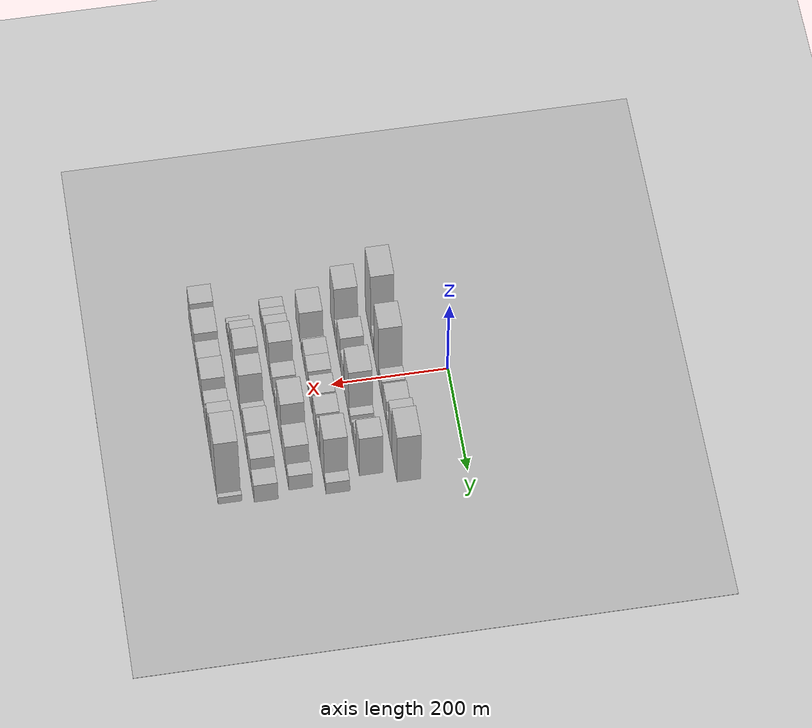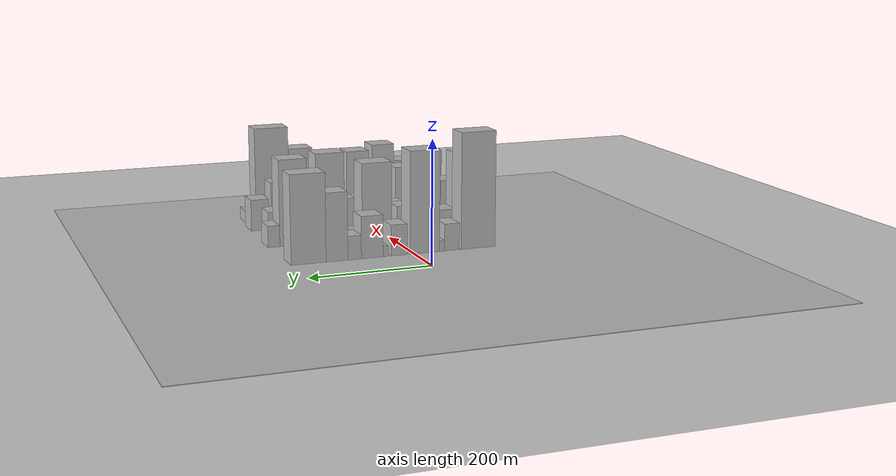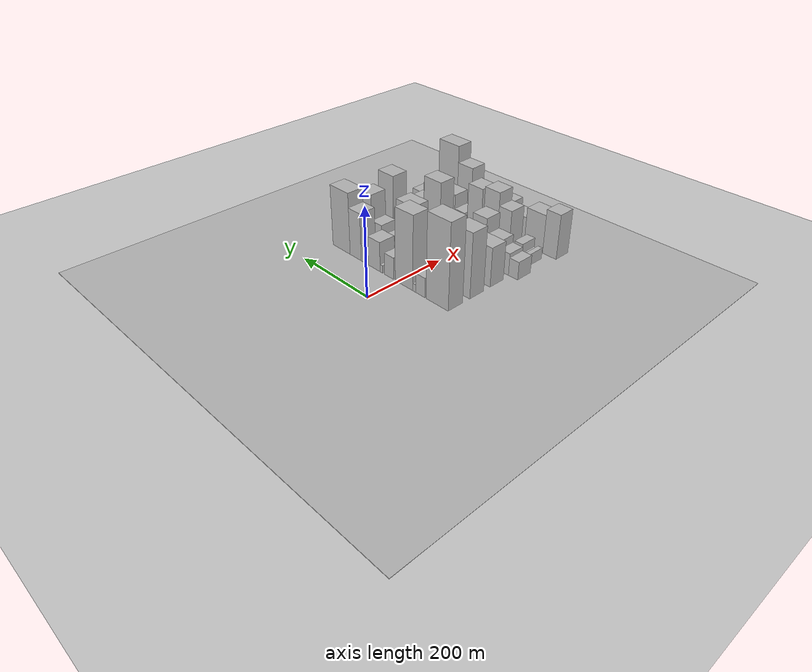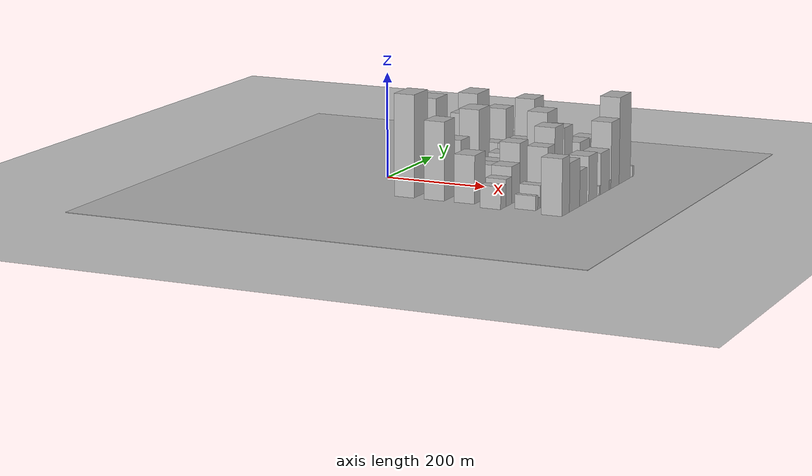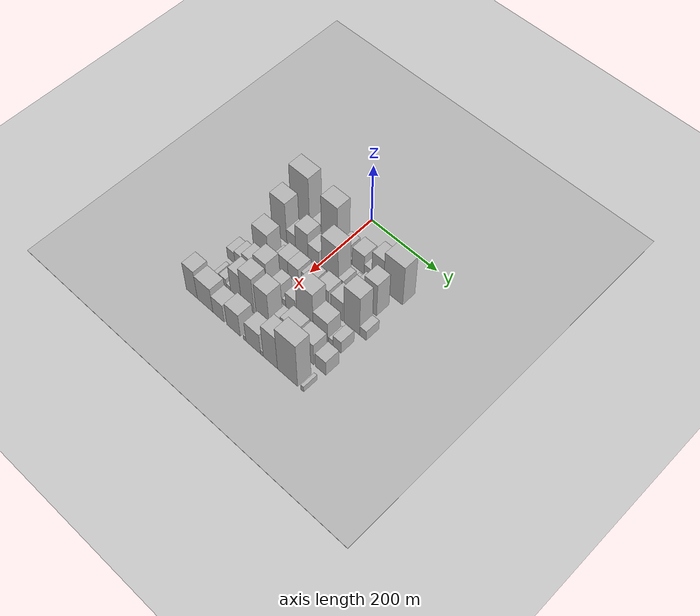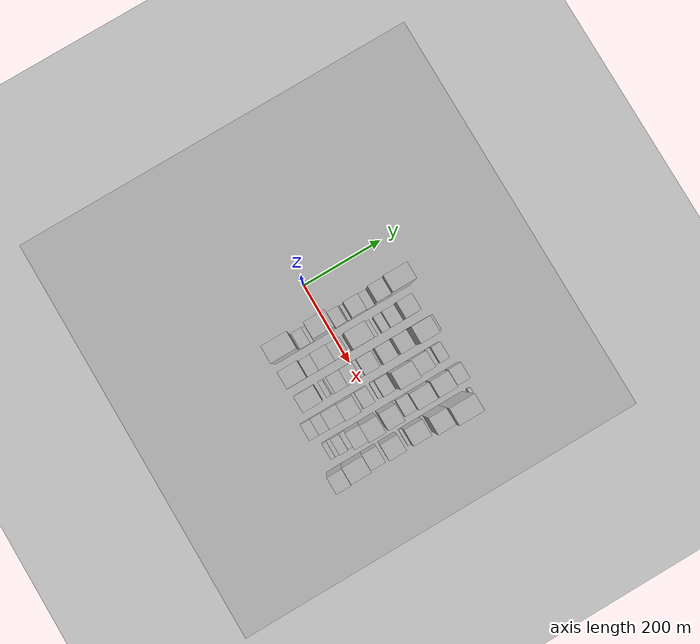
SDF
<sdf version="1.6">
 <world name="default">
  <include><name>ground_plane_1</name><uri>model://HANNAS_ground_plane</uri></include>
  <include>
   <name>ground_plane_2</name>
   <uri>model://HANNAS_ground_plane</uri>
   <pose>100 0 0  0 0 0</pose>
  </include>
  <model name="building_23">
   <static>1</static>
   <pose>100.0000 -110.9368 0 0.000000 0.000000 0.000000</pose>
   <link name="link">
    <pose>0 0 96.00 0 0 0</pose>
    <collision name="collision"><geometry><box><size>40.0000 59.7139 192.0000</size></box></geometry></collision>
    <visual name="visual">
     <cast_shadows>0</cast_shadows>
     <geometry><box><size>40.0000 59.7139 192.0000</size></box></geometry>
     <material>
      <script>
       <uri>model://HANNAS_wall/materials/scripts</uri>
       <uri>model://HANNAS_wall/materials/textures</uri>
       <name>vrc/HANNAS_wall</name>
      </script>
     </material>
    </visual>
   </link>
  </model>
  <model name="building_24">
   <static>1</static>
   <pose>100.0000 -65.2518 0 0.000000 0.000000 0.000000</pose>
   <link name="link">
    <pose>0 0 22.50 0 0 0</pose>
    <collision name="collision"><geometry><box><size>40.0000 25.6559 45.0000</size></box></geometry></collision>
    <visual name="visual">
     <cast_shadows>0</cast_shadows>
     <geometry><box><size>40.0000 25.6559 45.0000</size></box></geometry>
     <material>
      <script>
       <uri>model://HANNAS_wall/materials/scripts</uri>
       <uri>model://HANNAS_wall/materials/textures</uri>
       <name>vrc/HANNAS_wall</name>
      </script>
     </material>
    </visual>
   </link>
  </model>
  <model name="building_25">
   <static>1</static>
   <pose>100.0000 -48.0510 0 0.000000 0.000000 0.000000</pose>
   <link name="link">
    <pose>0 0 9.00 0 0 0</pose>
    <collision name="collision"><geometry><box><size>40.0000 8.7458 18.0000</size></box></geometry></collision>
    <visual name="visual">
     <cast_shadows>0</cast_shadows>
     <geometry><box><size>40.0000 8.7458 18.0000</size></box></geometry>
     <material>
      <script>
       <uri>model://HANNAS_wall/materials/scripts</uri>
       <uri>model://HANNAS_wall/materials/textures</uri>
       <name>vrc/HANNAS_wall</name>
      </script>
     </material>
    </visual>
   </link>
  </model>
  <model name="building_26">
   <static>1</static>
   <pose>100.0000 -18.4323 0 0.000000 0.000000 0.000000</pose>
   <link name="link">
    <pose>0 0 84.00 0 0 0</pose>
    <collision name="collision"><geometry><box><size>40.0000 50.4916 168.0000</size></box></geometry></collision>
    <visual name="visual">
     <cast_shadows>0</cast_shadows>
     <geometry><box><size>40.0000 50.4916 168.0000</size></box></geometry>
     <material>
      <script>
       <uri>model://HANNAS_wall/materials/scripts</uri>
       <uri>model://HANNAS_wall/materials/textures</uri>
       <name>vrc/HANNAS_wall</name>
      </script>
     </material>
    </visual>
   </link>
  </model>
  <model name="building_27">
   <static>1</static>
   <pose>100.0000 25.4766 0 0.000000 0.000000 0.000000</pose>
   <link name="link">
    <pose>0 0 25.50 0 0 0</pose>
    <collision name="collision"><geometry><box><size>40.0000 27.3262 51.0000</size></box></geometry></collision>
    <visual name="visual">
     <cast_shadows>0</cast_shadows>
     <geometry><box><size>40.0000 27.3262 51.0000</size></box></geometry>
     <material>
      <script>
       <uri>model://HANNAS_wall/materials/scripts</uri>
       <uri>model://HANNAS_wall/materials/textures</uri>
       <name>vrc/HANNAS_wall</name>
      </script>
     </material>
    </visual>
   </link>
  </model>
  <model name="building_28">
   <static>1</static>
   <pose>100.0000 48.3053 0 0.000000 0.000000 0.000000</pose>
   <link name="link">
    <pose>0 0 9.00 0 0 0</pose>
    <collision name="collision"><geometry><box><size>40.0000 8.3312 18.0000</size></box></geometry></collision>
    <visual name="visual">
     <cast_shadows>0</cast_shadows>
     <geometry><box><size>40.0000 8.3312 18.0000</size></box></geometry>
     <material>
      <script>
       <uri>model://HANNAS_wall/materials/scripts</uri>
       <uri>model://HANNAS_wall/materials/textures</uri>
       <name>vrc/HANNAS_wall</name>
      </script>
     </material>
    </visual>
   </link>
  </model>
  <model name="building_29">
   <static>1</static>
   <pose>100.0000 70.6988 0 0.000000 0.000000 0.000000</pose>
   <link name="link">
    <pose>0 0 34.50 0 0 0</pose>
    <collision name="collision"><geometry><box><size>40.0000 36.4558 69.0000</size></box></geometry></collision>
    <visual name="visual">
     <cast_shadows>0</cast_shadows>
     <geometry><box><size>40.0000 36.4558 69.0000</size></box></geometry>
     <material>
      <script>
       <uri>model://HANNAS_wall/materials/scripts</uri>
       <uri>model://HANNAS_wall/materials/textures</uri>
       <name>vrc/HANNAS_wall</name>
      </script>
     </material>
    </visual>
   </link>
  </model>
  <model name="building_30">
   <static>1</static>
   <pose>100.0000 100.1472 0 0.000000 0.000000 0.000000</pose>
   <link name="link">
    <pose>0 0 19.50 0 0 0</pose>
    <collision name="collision"><geometry><box><size>40.0000 22.4409 39.0000</size></box></geometry></collision>
    <visual name="visual">
     <cast_shadows>0</cast_shadows>
     <geometry><box><size>40.0000 22.4409 39.0000</size></box></geometry>
     <material>
      <script>
       <uri>model://HANNAS_wall/materials/scripts</uri>
       <uri>model://HANNAS_wall/materials/textures</uri>
       <name>vrc/HANNAS_wall</name>
      </script>
     </material>
    </visual>
   </link>
  </model>
  <model name="building_31">
   <static>1</static>
   <pose>100.0000 129.2735 0 0.000000 0.000000 0.000000</pose>
   <link name="link">
    <pose>0 0 55.50 0 0 0</pose>
    <collision name="collision"><geometry><box><size>40.0000 35.8119 111.0000</size></box></geometry></collision>
    <visual name="visual">
     <cast_shadows>0</cast_shadows>
     <geometry><box><size>40.0000 35.8119 111.0000</size></box></geometry>
     <material>
      <script>
       <uri>model://HANNAS_wall/materials/scripts</uri>
       <uri>model://HANNAS_wall/materials/textures</uri>
       <name>vrc/HANNAS_wall</name>
      </script>
     </material>
    </visual>
   </link>
  </model>
  <model name="building_32">
   <static>1</static>
   <pose>100.0000 175.7435 0 0.000000 0.000000 0.000000</pose>
   <link name="link">
    <pose>0 0 72.00 0 0 0</pose>
    <collision name="collision"><geometry><box><size>40.0000 57.1281 144.0000</size></box></geometry></collision>
    <visual name="visual">
     <cast_shadows>0</cast_shadows>
     <geometry><box><size>40.0000 57.1281 144.0000</size></box></geometry>
     <material>
      <script>
       <uri>model://HANNAS_wall/materials/scripts</uri>
       <uri>model://HANNAS_wall/materials/textures</uri>
       <name>vrc/HANNAS_wall</name>
      </script>
     </material>
    </visual>
   </link>
  </model>
  <model name="building_79">
   <static>1</static>
   <pose>160.0000 -117.7544 0 0.000000 0.000000 0.000000</pose>
   <link name="link">
    <pose>0 0 73.50 0 0 0</pose>
    <collision name="collision"><geometry><box><size>40.0000 46.8147 147.0000</size></box></geometry></collision>
    <visual name="visual">
     <cast_shadows>0</cast_shadows>
     <geometry><box><size>40.0000 46.8147 147.0000</size></box></geometry>
     <material>
      <script>
       <uri>model://HANNAS_wall/materials/scripts</uri>
       <uri>model://HANNAS_wall/materials/textures</uri>
       <name>vrc/HANNAS_wall</name>
      </script>
     </material>
    </visual>
   </link>
  </model>
  <model name="building_80">
   <static>1</static>
   <pose>160.0000 -80.1338 0 0.000000 0.000000 0.000000</pose>
   <link name="link">
    <pose>0 0 27.00 0 0 0</pose>
    <collision name="collision"><geometry><box><size>40.0000 28.4265 54.0000</size></box></geometry></collision>
    <visual name="visual">
     <cast_shadows>0</cast_shadows>
     <geometry><box><size>40.0000 28.4265 54.0000</size></box></geometry>
     <material>
      <script>
       <uri>model://HANNAS_wall/materials/scripts</uri>
       <uri>model://HANNAS_wall/materials/textures</uri>
       <name>vrc/HANNAS_wall</name>
      </script>
     </material>
    </visual>
   </link>
  </model>
  <model name="building_81">
   <static>1</static>
   <pose>160.0000 -46.2140 0 0.000000 0.000000 0.000000</pose>
   <link name="link">
    <pose>0 0 49.50 0 0 0</pose>
    <collision name="collision"><geometry><box><size>40.0000 39.4131 99.0000</size></box></geometry></collision>
    <visual name="visual">
     <cast_shadows>0</cast_shadows>
     <geometry><box><size>40.0000 39.4131 99.0000</size></box></geometry>
     <material>
      <script>
       <uri>model://HANNAS_wall/materials/scripts</uri>
       <uri>model://HANNAS_wall/materials/textures</uri>
       <name>vrc/HANNAS_wall</name>
      </script>
     </material>
    </visual>
   </link>
  </model>
  <model name="building_82">
   <static>1</static>
   <pose>160.0000 -9.4460 0 0.000000 0.000000 0.000000</pose>
   <link name="link">
    <pose>0 0 33.00 0 0 0</pose>
    <collision name="collision"><geometry><box><size>40.0000 34.1229 66.0000</size></box></geometry></collision>
    <visual name="visual">
     <cast_shadows>0</cast_shadows>
     <geometry><box><size>40.0000 34.1229 66.0000</size></box></geometry>
     <material>
      <script>
       <uri>model://HANNAS_wall/materials/scripts</uri>
       <uri>model://HANNAS_wall/materials/textures</uri>
       <name>vrc/HANNAS_wall</name>
      </script>
     </material>
    </visual>
   </link>
  </model>
  <model name="building_83">
   <static>1</static>
   <pose>160.0000 41.9178 0 0.000000 0.000000 0.000000</pose>
   <link name="link">
    <pose>0 0 70.50 0 0 0</pose>
    <collision name="collision"><geometry><box><size>40.0000 50.6047 141.0000</size></box></geometry></collision>
    <visual name="visual">
     <cast_shadows>0</cast_shadows>
     <geometry><box><size>40.0000 50.6047 141.0000</size></box></geometry>
     <material>
      <script>
       <uri>model://HANNAS_wall/materials/scripts</uri>
       <uri>model://HANNAS_wall/materials/textures</uri>
       <name>vrc/HANNAS_wall</name>
      </script>
     </material>
    </visual>
   </link>
  </model>
  <model name="building_84">
   <static>1</static>
   <pose>160.0000 75.5021 0 0.000000 0.000000 0.000000</pose>
   <link name="link">
    <pose>0 0 15.00 0 0 0</pose>
    <collision name="collision"><geometry><box><size>40.0000 16.5638 30.0000</size></box></geometry></collision>
    <visual name="visual">
     <cast_shadows>0</cast_shadows>
     <geometry><box><size>40.0000 16.5638 30.0000</size></box></geometry>
     <material>
      <script>
       <uri>model://HANNAS_wall/materials/scripts</uri>
       <uri>model://HANNAS_wall/materials/textures</uri>
       <name>vrc/HANNAS_wall</name>
      </script>
     </material>
    </visual>
   </link>
  </model>
  <model name="building_85">
   <static>1</static>
   <pose>160.0000 103.8093 0 0.000000 0.000000 0.000000</pose>
   <link name="link">
    <pose>0 0 18.00 0 0 0</pose>
    <collision name="collision"><geometry><box><size>40.0000 20.0506 36.0000</size></box></geometry></collision>
    <visual name="visual">
     <cast_shadows>0</cast_shadows>
     <geometry><box><size>40.0000 20.0506 36.0000</size></box></geometry>
     <material>
      <script>
       <uri>model://HANNAS_wall/materials/scripts</uri>
       <uri>model://HANNAS_wall/materials/textures</uri>
       <name>vrc/HANNAS_wall</name>
      </script>
     </material>
    </visual>
   </link>
  </model>
  <model name="building_86">
   <static>1</static>
   <pose>160.0000 129.3758 0 0.000000 0.000000 0.000000</pose>
   <link name="link">
    <pose>0 0 30.00 0 0 0</pose>
    <collision name="collision"><geometry><box><size>40.0000 31.0822 60.0000</size></box></geometry></collision>
    <visual name="visual">
     <cast_shadows>0</cast_shadows>
     <geometry><box><size>40.0000 31.0822 60.0000</size></box></geometry>
     <material>
      <script>
       <uri>model://HANNAS_wall/materials/scripts</uri>
       <uri>model://HANNAS_wall/materials/textures</uri>
       <name>vrc/HANNAS_wall</name>
      </script>
     </material>
    </visual>
   </link>
  </model>
  <model name="building_87">
   <static>1</static>
   <pose>160.0000 163.7706 0 0.000000 0.000000 0.000000</pose>
   <link name="link">
    <pose>0 0 60.00 0 0 0</pose>
    <collision name="collision"><geometry><box><size>40.0000 37.7075 120.0000</size></box></geometry></collision>
    <visual name="visual">
     <cast_shadows>0</cast_shadows>
     <geometry><box><size>40.0000 37.7075 120.0000</size></box></geometry>
     <material>
      <script>
       <uri>model://HANNAS_wall/materials/scripts</uri>
       <uri>model://HANNAS_wall/materials/textures</uri>
       <name>vrc/HANNAS_wall</name>
      </script>
     </material>
    </visual>
   </link>
  </model>
  <model name="building_131">
   <static>1</static>
   <pose>220.0000 -116.3165 0 0.000000 0.000000 0.000000</pose>
   <link name="link">
    <pose>0 0 45.00 0 0 0</pose>
    <collision name="collision"><geometry><box><size>40.0000 48.1519 90.0000</size></box></geometry></collision>
    <visual name="visual">
     <cast_shadows>0</cast_shadows>
     <geometry><box><size>40.0000 48.1519 90.0000</size></box></geometry>
     <material>
      <script>
       <uri>model://HANNAS_wall/materials/scripts</uri>
       <uri>model://HANNAS_wall/materials/textures</uri>
       <name>vrc/HANNAS_wall</name>
      </script>
     </material>
    </visual>
   </link>
  </model>
  <model name="building_132">
   <static>1</static>
   <pose>220.0000 -76.4578 0 0.000000 0.000000 0.000000</pose>
   <link name="link">
    <pose>0 0 13.50 0 0 0</pose>
    <collision name="collision"><geometry><box><size>40.0000 11.5655 27.0000</size></box></geometry></collision>
    <visual name="visual">
     <cast_shadows>0</cast_shadows>
     <geometry><box><size>40.0000 11.5655 27.0000</size></box></geometry>
     <material>
      <script>
       <uri>model://HANNAS_wall/materials/scripts</uri>
       <uri>model://HANNAS_wall/materials/textures</uri>
       <name>vrc/HANNAS_wall</name>
      </script>
     </material>
    </visual>
   </link>
  </model>
  <model name="building_133">
   <static>1</static>
   <pose>220.0000 -64.6179 0 0.000000 0.000000 0.000000</pose>
   <link name="link">
    <pose>0 0 7.50 0 0 0</pose>
    <collision name="collision"><geometry><box><size>40.0000 6.1143 15.0000</size></box></geometry></collision>
    <visual name="visual">
     <cast_shadows>0</cast_shadows>
     <geometry><box><size>40.0000 6.1143 15.0000</size></box></geometry>
     <material>
      <script>
       <uri>model://HANNAS_wall/materials/scripts</uri>
       <uri>model://HANNAS_wall/materials/textures</uri>
       <name>vrc/HANNAS_wall</name>
      </script>
     </material>
    </visual>
   </link>
  </model>
  <model name="building_134">
   <static>1</static>
   <pose>220.0000 -45.4489 0 0.000000 0.000000 0.000000</pose>
   <link name="link">
    <pose>0 0 28.50 0 0 0</pose>
    <collision name="collision"><geometry><box><size>40.0000 32.2237 57.0000</size></box></geometry></collision>
    <visual name="visual">
     <cast_shadows>0</cast_shadows>
     <geometry><box><size>40.0000 32.2237 57.0000</size></box></geometry>
     <material>
      <script>
       <uri>model://HANNAS_wall/materials/scripts</uri>
       <uri>model://HANNAS_wall/materials/textures</uri>
       <name>vrc/HANNAS_wall</name>
      </script>
     </material>
    </visual>
   </link>
  </model>
  <model name="building_135">
   <static>1</static>
   <pose>220.0000 -12.8151 0 0.000000 0.000000 0.000000</pose>
   <link name="link">
    <pose>0 0 28.50 0 0 0</pose>
    <collision name="collision"><geometry><box><size>40.0000 33.0440 57.0000</size></box></geometry></collision>
    <visual name="visual">
     <cast_shadows>0</cast_shadows>
     <geometry><box><size>40.0000 33.0440 57.0000</size></box></geometry>
     <material>
      <script>
       <uri>model://HANNAS_wall/materials/scripts</uri>
       <uri>model://HANNAS_wall/materials/textures</uri>
       <name>vrc/HANNAS_wall</name>
      </script>
     </material>
    </visual>
   </link>
  </model>
  <model name="building_136">
   <static>1</static>
   <pose>220.0000 8.8299 0 0.000000 0.000000 0.000000</pose>
   <link name="link">
    <pose>0 0 12.00 0 0 0</pose>
    <collision name="collision"><geometry><box><size>40.0000 10.2460 24.0000</size></box></geometry></collision>
    <visual name="visual">
     <cast_shadows>0</cast_shadows>
     <geometry><box><size>40.0000 10.2460 24.0000</size></box></geometry>
     <material>
      <script>
       <uri>model://HANNAS_wall/materials/scripts</uri>
       <uri>model://HANNAS_wall/materials/textures</uri>
       <name>vrc/HANNAS_wall</name>
      </script>
     </material>
    </visual>
   </link>
  </model>
  <model name="building_137">
   <static>1</static>
   <pose>220.0000 32.6746 0 0.000000 0.000000 0.000000</pose>
   <link name="link">
    <pose>0 0 31.50 0 0 0</pose>
    <collision name="collision"><geometry><box><size>40.0000 37.4432 63.0000</size></box></geometry></collision>
    <visual name="visual">
     <cast_shadows>0</cast_shadows>
     <geometry><box><size>40.0000 37.4432 63.0000</size></box></geometry>
     <material>
      <script>
       <uri>model://HANNAS_wall/materials/scripts</uri>
       <uri>model://HANNAS_wall/materials/textures</uri>
       <name>vrc/HANNAS_wall</name>
      </script>
     </material>
    </visual>
   </link>
  </model>
  <model name="building_138">
   <static>1</static>
   <pose>220.0000 77.9921 0 0.000000 0.000000 0.000000</pose>
   <link name="link">
    <pose>0 0 36.00 0 0 0</pose>
    <collision name="collision"><geometry><box><size>40.0000 37.1918 72.0000</size></box></geometry></collision>
    <visual name="visual">
     <cast_shadows>0</cast_shadows>
     <geometry><box><size>40.0000 37.1918 72.0000</size></box></geometry>
     <material>
      <script>
       <uri>model://HANNAS_wall/materials/scripts</uri>
       <uri>model://HANNAS_wall/materials/textures</uri>
       <name>vrc/HANNAS_wall</name>
      </script>
     </material>
    </visual>
   </link>
  </model>
  <model name="building_139">
   <static>1</static>
   <pose>220.0000 120.9197 0 0.000000 0.000000 0.000000</pose>
   <link name="link">
    <pose>0 0 36.00 0 0 0</pose>
    <collision name="collision"><geometry><box><size>40.0000 36.6635 72.0000</size></box></geometry></collision>
    <visual name="visual">
     <cast_shadows>0</cast_shadows>
     <geometry><box><size>40.0000 36.6635 72.0000</size></box></geometry>
     <material>
      <script>
       <uri>model://HANNAS_wall/materials/scripts</uri>
       <uri>model://HANNAS_wall/materials/textures</uri>
       <name>vrc/HANNAS_wall</name>
      </script>
     </material>
    </visual>
   </link>
  </model>
  <model name="building_140">
   <static>1</static>
   <pose>220.0000 165.5532 0 0.000000 0.000000 0.000000</pose>
   <link name="link">
    <pose>0 0 72.00 0 0 0</pose>
    <collision name="collision"><geometry><box><size>40.0000 46.6034 144.0000</size></box></geometry></collision>
    <visual name="visual">
     <cast_shadows>0</cast_shadows>
     <geometry><box><size>40.0000 46.6034 144.0000</size></box></geometry>
     <material>
      <script>
       <uri>model://HANNAS_wall/materials/scripts</uri>
       <uri>model://HANNAS_wall/materials/textures</uri>
       <name>vrc/HANNAS_wall</name>
      </script>
     </material>
    </visual>
   </link>
  </model>
  <model name="building_141">
   <static>1</static>
   <pose>220.0000 198.7970 0 0.000000 0.000000 0.000000</pose>
   <link name="link">
    <pose>0 0 18.00 0 0 0</pose>
    <collision name="collision"><geometry><box><size>40.0000 19.8843 36.0000</size></box></geometry></collision>
    <visual name="visual">
     <cast_shadows>0</cast_shadows>
     <geometry><box><size>40.0000 19.8843 36.0000</size></box></geometry>
     <material>
      <script>
       <uri>model://HANNAS_wall/materials/scripts</uri>
       <uri>model://HANNAS_wall/materials/textures</uri>
       <name>vrc/HANNAS_wall</name>
      </script>
     </material>
    </visual>
   </link>
  </model>
  <model name="building_182">
   <static>1</static>
   <pose>280.0000 -149.0292 0 0.000000 0.000000 0.000000</pose>
   <link name="link">
    <pose>0 0 21.00 0 0 0</pose>
    <collision name="collision"><geometry><box><size>40.0000 24.4146 42.0000</size></box></geometry></collision>
    <visual name="visual">
     <cast_shadows>0</cast_shadows>
     <geometry><box><size>40.0000 24.4146 42.0000</size></box></geometry>
     <material>
      <script>
       <uri>model://HANNAS_wall/materials/scripts</uri>
       <uri>model://HANNAS_wall/materials/textures</uri>
       <name>vrc/HANNAS_wall</name>
      </script>
     </material>
    </visual>
   </link>
  </model>
  <model name="building_183">
   <static>1</static>
   <pose>280.0000 -123.7566 0 0.000000 0.000000 0.000000</pose>
   <link name="link">
    <pose>0 0 25.50 0 0 0</pose>
    <collision name="collision"><geometry><box><size>40.0000 26.1306 51.0000</size></box></geometry></collision>
    <visual name="visual">
     <cast_shadows>0</cast_shadows>
     <geometry><box><size>40.0000 26.1306 51.0000</size></box></geometry>
     <material>
      <script>
       <uri>model://HANNAS_wall/materials/scripts</uri>
       <uri>model://HANNAS_wall/materials/textures</uri>
       <name>vrc/HANNAS_wall</name>
      </script>
     </material>
    </visual>
   </link>
  </model>
  <model name="building_184">
   <static>1</static>
   <pose>280.0000 -91.3103 0 0.000000 0.000000 0.000000</pose>
   <link name="link">
    <pose>0 0 34.50 0 0 0</pose>
    <collision name="collision"><geometry><box><size>40.0000 38.7620 69.0000</size></box></geometry></collision>
    <visual name="visual">
     <cast_shadows>0</cast_shadows>
     <geometry><box><size>40.0000 38.7620 69.0000</size></box></geometry>
     <material>
      <script>
       <uri>model://HANNAS_wall/materials/scripts</uri>
       <uri>model://HANNAS_wall/materials/textures</uri>
       <name>vrc/HANNAS_wall</name>
      </script>
     </material>
    </visual>
   </link>
  </model>
  <model name="building_185">
   <static>1</static>
   <pose>280.0000 -52.7716 0 0.000000 0.000000 0.000000</pose>
   <link name="link">
    <pose>0 0 52.50 0 0 0</pose>
    <collision name="collision"><geometry><box><size>40.0000 38.3154 105.0000</size></box></geometry></collision>
    <visual name="visual">
     <cast_shadows>0</cast_shadows>
     <geometry><box><size>40.0000 38.3154 105.0000</size></box></geometry>
     <material>
      <script>
       <uri>model://HANNAS_wall/materials/scripts</uri>
       <uri>model://HANNAS_wall/materials/textures</uri>
       <name>vrc/HANNAS_wall</name>
      </script>
     </material>
    </visual>
   </link>
  </model>
  <model name="building_186">
   <static>1</static>
   <pose>280.0000 -29.6644 0 0.000000 0.000000 0.000000</pose>
   <link name="link">
    <pose>0 0 9.00 0 0 0</pose>
    <collision name="collision"><geometry><box><size>40.0000 7.8990 18.0000</size></box></geometry></collision>
    <visual name="visual">
     <cast_shadows>0</cast_shadows>
     <geometry><box><size>40.0000 7.8990 18.0000</size></box></geometry>
     <material>
      <script>
       <uri>model://HANNAS_wall/materials/scripts</uri>
       <uri>model://HANNAS_wall/materials/textures</uri>
       <name>vrc/HANNAS_wall</name>
      </script>
     </material>
    </visual>
   </link>
  </model>
  <model name="building_187">
   <static>1</static>
   <pose>280.0000 -11.0611 0 0.000000 0.000000 0.000000</pose>
   <link name="link">
    <pose>0 0 27.00 0 0 0</pose>
    <collision name="collision"><geometry><box><size>40.0000 29.3077 54.0000</size></box></geometry></collision>
    <visual name="visual">
     <cast_shadows>0</cast_shadows>
     <geometry><box><size>40.0000 29.3077 54.0000</size></box></geometry>
     <material>
      <script>
       <uri>model://HANNAS_wall/materials/scripts</uri>
       <uri>model://HANNAS_wall/materials/textures</uri>
       <name>vrc/HANNAS_wall</name>
      </script>
     </material>
    </visual>
   </link>
  </model>
  <model name="building_188">
   <static>1</static>
   <pose>280.0000 18.9117 0 0.000000 0.000000 0.000000</pose>
   <link name="link">
    <pose>0 0 12.00 0 0 0</pose>
    <collision name="collision"><geometry><box><size>40.0000 10.6379 24.0000</size></box></geometry></collision>
    <visual name="visual">
     <cast_shadows>0</cast_shadows>
     <geometry><box><size>40.0000 10.6379 24.0000</size></box></geometry>
     <material>
      <script>
       <uri>model://HANNAS_wall/materials/scripts</uri>
       <uri>model://HANNAS_wall/materials/textures</uri>
       <name>vrc/HANNAS_wall</name>
      </script>
     </material>
    </visual>
   </link>
  </model>
  <model name="building_189">
   <static>1</static>
   <pose>280.0000 39.4645 0 0.000000 0.000000 0.000000</pose>
   <link name="link">
    <pose>0 0 28.50 0 0 0</pose>
    <collision name="collision"><geometry><box><size>40.0000 30.4677 57.0000</size></box></geometry></collision>
    <visual name="visual">
     <cast_shadows>0</cast_shadows>
     <geometry><box><size>40.0000 30.4677 57.0000</size></box></geometry>
     <material>
      <script>
       <uri>model://HANNAS_wall/materials/scripts</uri>
       <uri>model://HANNAS_wall/materials/textures</uri>
       <name>vrc/HANNAS_wall</name>
      </script>
     </material>
    </visual>
   </link>
  </model>
  <model name="building_190">
   <static>1</static>
   <pose>280.0000 83.7071 0 0.000000 0.000000 0.000000</pose>
   <link name="link">
    <pose>0 0 69.00 0 0 0</pose>
    <collision name="collision"><geometry><box><size>40.0000 50.0174 138.0000</size></box></geometry></collision>
    <visual name="visual">
     <cast_shadows>0</cast_shadows>
     <geometry><box><size>40.0000 50.0174 138.0000</size></box></geometry>
     <material>
      <script>
       <uri>model://HANNAS_wall/materials/scripts</uri>
       <uri>model://HANNAS_wall/materials/textures</uri>
       <name>vrc/HANNAS_wall</name>
      </script>
     </material>
    </visual>
   </link>
  </model>
  <model name="building_191">
   <static>1</static>
   <pose>280.0000 130.6356 0 0.000000 0.000000 0.000000</pose>
   <link name="link">
    <pose>0 0 37.50 0 0 0</pose>
    <collision name="collision"><geometry><box><size>40.0000 43.8396 75.0000</size></box></geometry></collision>
    <visual name="visual">
     <cast_shadows>0</cast_shadows>
     <geometry><box><size>40.0000 43.8396 75.0000</size></box></geometry>
     <material>
      <script>
       <uri>model://HANNAS_wall/materials/scripts</uri>
       <uri>model://HANNAS_wall/materials/textures</uri>
       <name>vrc/HANNAS_wall</name>
      </script>
     </material>
    </visual>
   </link>
  </model>
  <model name="building_192">
   <static>1</static>
   <pose>280.0000 161.5256 0 0.000000 0.000000 0.000000</pose>
   <link name="link">
    <pose>0 0 12.00 0 0 0</pose>
    <collision name="collision"><geometry><box><size>40.0000 11.9404 24.0000</size></box></geometry></collision>
    <visual name="visual">
     <cast_shadows>0</cast_shadows>
     <geometry><box><size>40.0000 11.9404 24.0000</size></box></geometry>
     <material>
      <script>
       <uri>model://HANNAS_wall/materials/scripts</uri>
       <uri>model://HANNAS_wall/materials/textures</uri>
       <name>vrc/HANNAS_wall</name>
      </script>
     </material>
    </visual>
   </link>
  </model>
  <model name="building_193">
   <static>1</static>
   <pose>280.0000 179.5669 0 0.000000 0.000000 0.000000</pose>
   <link name="link">
    <pose>0 0 22.50 0 0 0</pose>
    <collision name="collision"><geometry><box><size>40.0000 24.1422 45.0000</size></box></geometry></collision>
    <visual name="visual">
     <cast_shadows>0</cast_shadows>
     <geometry><box><size>40.0000 24.1422 45.0000</size></box></geometry>
     <material>
      <script>
       <uri>model://HANNAS_wall/materials/scripts</uri>
       <uri>model://HANNAS_wall/materials/textures</uri>
       <name>vrc/HANNAS_wall</name>
      </script>
     </material>
    </visual>
   </link>
  </model>
  <model name="building_238">
   <static>1</static>
   <pose>340.0000 -136.8639 0 0.000000 0.000000 0.000000</pose>
   <link name="link">
    <pose>0 0 13.50 0 0 0</pose>
    <collision name="collision"><geometry><box><size>40.0000 10.8944 27.0000</size></box></geometry></collision>
    <visual name="visual">
     <cast_shadows>0</cast_shadows>
     <geometry><box><size>40.0000 10.8944 27.0000</size></box></geometry>
     <material>
      <script>
       <uri>model://HANNAS_wall/materials/scripts</uri>
       <uri>model://HANNAS_wall/materials/textures</uri>
       <name>vrc/HANNAS_wall</name>
      </script>
     </material>
    </visual>
   </link>
  </model>
  <model name="building_239">
   <static>1</static>
   <pose>340.0000 -126.2422 0 0.000000 0.000000 0.000000</pose>
   <link name="link">
    <pose>0 0 10.50 0 0 0</pose>
    <collision name="collision"><geometry><box><size>40.0000 10.3490 21.0000</size></box></geometry></collision>
    <visual name="visual">
     <cast_shadows>0</cast_shadows>
     <geometry><box><size>40.0000 10.3490 21.0000</size></box></geometry>
     <material>
      <script>
       <uri>model://HANNAS_wall/materials/scripts</uri>
       <uri>model://HANNAS_wall/materials/textures</uri>
       <name>vrc/HANNAS_wall</name>
      </script>
     </material>
    </visual>
   </link>
  </model>
  <model name="building_240">
   <static>1</static>
   <pose>340.0000 -110.2978 0 0.000000 0.000000 0.000000</pose>
   <link name="link">
    <pose>0 0 21.00 0 0 0</pose>
    <collision name="collision"><geometry><box><size>40.0000 21.5398 42.0000</size></box></geometry></collision>
    <visual name="visual">
     <cast_shadows>0</cast_shadows>
     <geometry><box><size>40.0000 21.5398 42.0000</size></box></geometry>
     <material>
      <script>
       <uri>model://HANNAS_wall/materials/scripts</uri>
       <uri>model://HANNAS_wall/materials/textures</uri>
       <name>vrc/HANNAS_wall</name>
      </script>
     </material>
    </visual>
   </link>
  </model>
  <model name="building_241">
   <static>1</static>
   <pose>340.0000 -92.8011 0 0.000000 0.000000 0.000000</pose>
   <link name="link">
    <pose>0 0 13.50 0 0 0</pose>
    <collision name="collision"><geometry><box><size>40.0000 13.4538 27.0000</size></box></geometry></collision>
    <visual name="visual">
     <cast_shadows>0</cast_shadows>
     <geometry><box><size>40.0000 13.4538 27.0000</size></box></geometry>
     <material>
      <script>
       <uri>model://HANNAS_wall/materials/scripts</uri>
       <uri>model://HANNAS_wall/materials/textures</uri>
       <name>vrc/HANNAS_wall</name>
      </script>
     </material>
    </visual>
   </link>
  </model>
  <model name="building_242">
   <static>1</static>
   <pose>340.0000 -69.1579 0 0.000000 0.000000 0.000000</pose>
   <link name="link">
    <pose>0 0 52.50 0 0 0</pose>
    <collision name="collision"><geometry><box><size>40.0000 33.8324 105.0000</size></box></geometry></collision>
    <visual name="visual">
     <cast_shadows>0</cast_shadows>
     <geometry><box><size>40.0000 33.8324 105.0000</size></box></geometry>
     <material>
      <script>
       <uri>model://HANNAS_wall/materials/scripts</uri>
       <uri>model://HANNAS_wall/materials/textures</uri>
       <name>vrc/HANNAS_wall</name>
      </script>
     </material>
    </visual>
   </link>
  </model>
  <model name="building_243">
   <static>1</static>
   <pose>340.0000 -31.9350 0 0.000000 0.000000 0.000000</pose>
   <link name="link">
    <pose>0 0 67.50 0 0 0</pose>
    <collision name="collision"><geometry><box><size>40.0000 40.6135 135.0000</size></box></geometry></collision>
    <visual name="visual">
     <cast_shadows>0</cast_shadows>
     <geometry><box><size>40.0000 40.6135 135.0000</size></box></geometry>
     <material>
      <script>
       <uri>model://HANNAS_wall/materials/scripts</uri>
       <uri>model://HANNAS_wall/materials/textures</uri>
       <name>vrc/HANNAS_wall</name>
      </script>
     </material>
    </visual>
   </link>
  </model>
  <model name="building_244">
   <static>1</static>
   <pose>340.0000 14.5920 0 0.000000 0.000000 0.000000</pose>
   <link name="link">
    <pose>0 0 63.00 0 0 0</pose>
    <collision name="collision"><geometry><box><size>40.0000 40.4403 126.0000</size></box></geometry></collision>
    <visual name="visual">
     <cast_shadows>0</cast_shadows>
     <geometry><box><size>40.0000 40.4403 126.0000</size></box></geometry>
     <material>
      <script>
       <uri>model://HANNAS_wall/materials/scripts</uri>
       <uri>model://HANNAS_wall/materials/textures</uri>
       <name>vrc/HANNAS_wall</name>
      </script>
     </material>
    </visual>
   </link>
  </model>
  <model name="building_245">
   <static>1</static>
   <pose>340.0000 38.7737 0 0.000000 0.000000 0.000000</pose>
   <link name="link">
    <pose>0 0 9.00 0 0 0</pose>
    <collision name="collision"><geometry><box><size>40.0000 7.9231 18.0000</size></box></geometry></collision>
    <visual name="visual">
     <cast_shadows>0</cast_shadows>
     <geometry><box><size>40.0000 7.9231 18.0000</size></box></geometry>
     <material>
      <script>
       <uri>model://HANNAS_wall/materials/scripts</uri>
       <uri>model://HANNAS_wall/materials/textures</uri>
       <name>vrc/HANNAS_wall</name>
      </script>
     </material>
    </visual>
   </link>
  </model>
  <model name="building_246">
   <static>1</static>
   <pose>340.0000 57.6546 0 0.000000 0.000000 0.000000</pose>
   <link name="link">
    <pose>0 0 25.50 0 0 0</pose>
    <collision name="collision"><geometry><box><size>40.0000 29.8387 51.0000</size></box></geometry></collision>
    <visual name="visual">
     <cast_shadows>0</cast_shadows>
     <geometry><box><size>40.0000 29.8387 51.0000</size></box></geometry>
     <material>
      <script>
       <uri>model://HANNAS_wall/materials/scripts</uri>
       <uri>model://HANNAS_wall/materials/textures</uri>
       <name>vrc/HANNAS_wall</name>
      </script>
     </material>
    </visual>
   </link>
  </model>
  <model name="building_247">
   <static>1</static>
   <pose>340.0000 96.9923 0 0.000000 0.000000 0.000000</pose>
   <link name="link">
    <pose>0 0 42.00 0 0 0</pose>
    <collision name="collision"><geometry><box><size>40.0000 48.8367 84.0000</size></box></geometry></collision>
    <visual name="visual">
     <cast_shadows>0</cast_shadows>
     <geometry><box><size>40.0000 48.8367 84.0000</size></box></geometry>
     <material>
      <script>
       <uri>model://HANNAS_wall/materials/scripts</uri>
       <uri>model://HANNAS_wall/materials/textures</uri>
       <name>vrc/HANNAS_wall</name>
      </script>
     </material>
    </visual>
   </link>
  </model>
  <model name="building_248">
   <static>1</static>
   <pose>340.0000 147.2316 0 0.000000 0.000000 0.000000</pose>
   <link name="link">
    <pose>0 0 40.50 0 0 0</pose>
    <collision name="collision"><geometry><box><size>40.0000 45.6419 81.0000</size></box></geometry></collision>
    <visual name="visual">
     <cast_shadows>0</cast_shadows>
     <geometry><box><size>40.0000 45.6419 81.0000</size></box></geometry>
     <material>
      <script>
       <uri>model://HANNAS_wall/materials/scripts</uri>
       <uri>model://HANNAS_wall/materials/textures</uri>
       <name>vrc/HANNAS_wall</name>
      </script>
     </material>
    </visual>
   </link>
  </model>
  <model name="building_249">
   <static>1</static>
   <pose>340.0000 189.8269 0 0.000000 0.000000 0.000000</pose>
   <link name="link">
    <pose>0 0 27.00 0 0 0</pose>
    <collision name="collision"><geometry><box><size>40.0000 31.5485 54.0000</size></box></geometry></collision>
    <visual name="visual">
     <cast_shadows>0</cast_shadows>
     <geometry><box><size>40.0000 31.5485 54.0000</size></box></geometry>
     <material>
      <script>
       <uri>model://HANNAS_wall/materials/scripts</uri>
       <uri>model://HANNAS_wall/materials/textures</uri>
       <name>vrc/HANNAS_wall</name>
      </script>
     </material>
    </visual>
   </link>
  </model>
  <model name="building_292">
   <static>1</static>
   <pose>400.0000 -147.4130 0 0.000000 0.000000 0.000000</pose>
   <link name="link">
    <pose>0 0 52.50 0 0 0</pose>
    <collision name="collision"><geometry><box><size>40.0000 35.9902 105.0000</size></box></geometry></collision>
    <visual name="visual">
     <cast_shadows>0</cast_shadows>
     <geometry><box><size>40.0000 35.9902 105.0000</size></box></geometry>
     <material>
      <script>
       <uri>model://HANNAS_wall/materials/scripts</uri>
       <uri>model://HANNAS_wall/materials/textures</uri>
       <name>vrc/HANNAS_wall</name>
      </script>
     </material>
    </visual>
   </link>
  </model>
  <model name="building_293">
   <static>1</static>
   <pose>400.0000 -104.4328 0 0.000000 0.000000 0.000000</pose>
   <link name="link">
    <pose>0 0 45.00 0 0 0</pose>
    <collision name="collision"><geometry><box><size>40.0000 49.9700 90.0000</size></box></geometry></collision>
    <visual name="visual">
     <cast_shadows>0</cast_shadows>
     <geometry><box><size>40.0000 49.9700 90.0000</size></box></geometry>
     <material>
      <script>
       <uri>model://HANNAS_wall/materials/scripts</uri>
       <uri>model://HANNAS_wall/materials/textures</uri>
       <name>vrc/HANNAS_wall</name>
      </script>
     </material>
    </visual>
   </link>
  </model>
  <model name="building_294">
   <static>1</static>
   <pose>400.0000 -61.3586 0 0.000000 0.000000 0.000000</pose>
   <link name="link">
    <pose>0 0 33.00 0 0 0</pose>
    <collision name="collision"><geometry><box><size>40.0000 36.1784 66.0000</size></box></geometry></collision>
    <visual name="visual">
     <cast_shadows>0</cast_shadows>
     <geometry><box><size>40.0000 36.1784 66.0000</size></box></geometry>
     <material>
      <script>
       <uri>model://HANNAS_wall/materials/scripts</uri>
       <uri>model://HANNAS_wall/materials/textures</uri>
       <name>vrc/HANNAS_wall</name>
      </script>
     </material>
    </visual>
   </link>
  </model>
  <model name="building_295">
   <static>1</static>
   <pose>400.0000 -13.9844 0 0.000000 0.000000 0.000000</pose>
   <link name="link">
    <pose>0 0 42.00 0 0 0</pose>
    <collision name="collision"><geometry><box><size>40.0000 42.5701 84.0000</size></box></geometry></collision>
    <visual name="visual">
     <cast_shadows>0</cast_shadows>
     <geometry><box><size>40.0000 42.5701 84.0000</size></box></geometry>
     <material>
      <script>
       <uri>model://HANNAS_wall/materials/scripts</uri>
       <uri>model://HANNAS_wall/materials/textures</uri>
       <name>vrc/HANNAS_wall</name>
      </script>
     </material>
    </visual>
   </link>
  </model>
  <model name="building_296">
   <static>1</static>
   <pose>400.0000 21.0511 0 0.000000 0.000000 0.000000</pose>
   <link name="link">
    <pose>0 0 9.00 0 0 0</pose>
    <collision name="collision"><geometry><box><size>40.0000 7.5010 18.0000</size></box></geometry></collision>
    <visual name="visual">
     <cast_shadows>0</cast_shadows>
     <geometry><box><size>40.0000 7.5010 18.0000</size></box></geometry>
     <material>
      <script>
       <uri>model://HANNAS_wall/materials/scripts</uri>
       <uri>model://HANNAS_wall/materials/textures</uri>
       <name>vrc/HANNAS_wall</name>
      </script>
     </material>
    </visual>
   </link>
  </model>
  <model name="building_297">
   <static>1</static>
   <pose>400.0000 47.4183 0 0.000000 0.000000 0.000000</pose>
   <link name="link">
    <pose>0 0 39.00 0 0 0</pose>
    <collision name="collision"><geometry><box><size>40.0000 45.2334 78.0000</size></box></geometry></collision>
    <visual name="visual">
     <cast_shadows>0</cast_shadows>
     <geometry><box><size>40.0000 45.2334 78.0000</size></box></geometry>
     <material>
      <script>
       <uri>model://HANNAS_wall/materials/scripts</uri>
       <uri>model://HANNAS_wall/materials/textures</uri>
       <name>vrc/HANNAS_wall</name>
      </script>
     </material>
    </visual>
   </link>
  </model>
  <model name="building_298">
   <static>1</static>
   <pose>400.0000 74.2024 0 0.000000 0.000000 0.000000</pose>
   <link name="link">
    <pose>0 0 9.00 0 0 0</pose>
    <collision name="collision"><geometry><box><size>40.0000 8.3348 18.0000</size></box></geometry></collision>
    <visual name="visual">
     <cast_shadows>0</cast_shadows>
     <geometry><box><size>40.0000 8.3348 18.0000</size></box></geometry>
     <material>
      <script>
       <uri>model://HANNAS_wall/materials/scripts</uri>
       <uri>model://HANNAS_wall/materials/textures</uri>
       <name>vrc/HANNAS_wall</name>
      </script>
     </material>
    </visual>
   </link>
  </model>
  <model name="building_299">
   <static>1</static>
   <pose>400.0000 99.9544 0 0.000000 0.000000 0.000000</pose>
   <link name="link">
    <pose>0 0 63.00 0 0 0</pose>
    <collision name="collision"><geometry><box><size>40.0000 43.1692 126.0000</size></box></geometry></collision>
    <visual name="visual">
     <cast_shadows>0</cast_shadows>
     <geometry><box><size>40.0000 43.1692 126.0000</size></box></geometry>
     <material>
      <script>
       <uri>model://HANNAS_wall/materials/scripts</uri>
       <uri>model://HANNAS_wall/materials/textures</uri>
       <name>vrc/HANNAS_wall</name>
      </script>
     </material>
    </visual>
   </link>
  </model>
  <model name="building_300">
   <static>1</static>
   <pose>400.0000 151.4927 0 0.000000 0.000000 0.000000</pose>
   <link name="link">
    <pose>0 0 82.50 0 0 0</pose>
    <collision name="collision"><geometry><box><size>40.0000 59.9074 165.0000</size></box></geometry></collision>
    <visual name="visual">
     <cast_shadows>0</cast_shadows>
     <geometry><box><size>40.0000 59.9074 165.0000</size></box></geometry>
     <material>
      <script>
       <uri>model://HANNAS_wall/materials/scripts</uri>
       <uri>model://HANNAS_wall/materials/textures</uri>
       <name>vrc/HANNAS_wall</name>
      </script>
     </material>
    </visual>
   </link>
  </model>
  <model name="building_301">
   <static>1</static>
   <pose>400.0000 195.6504 0 0.000000 0.000000 0.000000</pose>
   <link name="link">
    <pose>0 0 10.50 0 0 0</pose>
    <collision name="collision"><geometry><box><size>40.0000 8.4080 21.0000</size></box></geometry></collision>
    <visual name="visual">
     <cast_shadows>0</cast_shadows>
     <geometry><box><size>40.0000 8.4080 21.0000</size></box></geometry>
     <material>
      <script>
       <uri>model://HANNAS_wall/materials/scripts</uri>
       <uri>model://HANNAS_wall/materials/textures</uri>
       <name>vrc/HANNAS_wall</name>
      </script>
     </material>
    </visual>
   </link>
  </model>
 </world>
</sdf>
